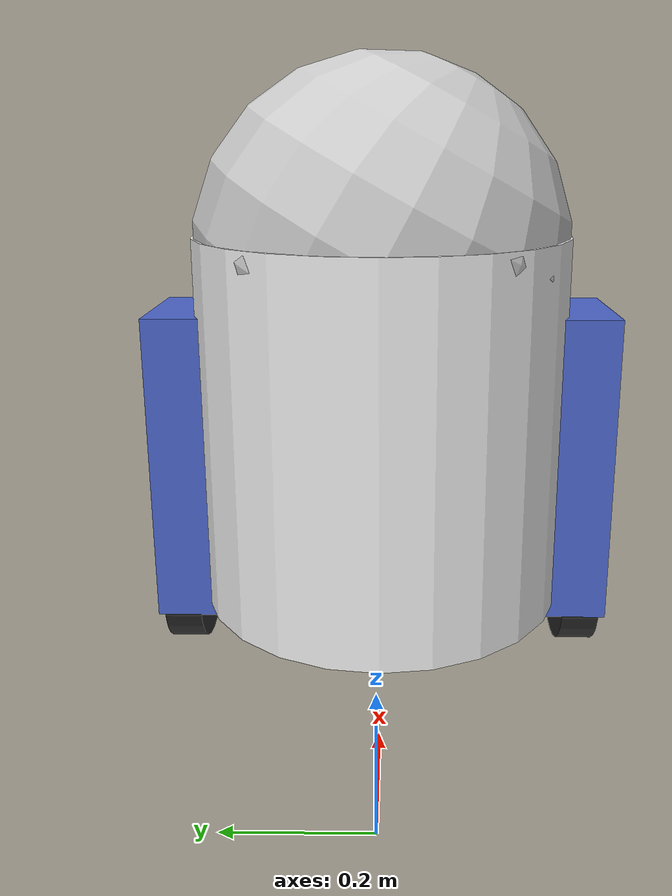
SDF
<?xml version="1.0" ?>
<sdf version="1.10">
    <model name="r2d2" canonical_link="body">

      <link name="body">
        <pose relative_to="__model__">0.5 0 0.4 0 0 0</pose>
        <inertial>
          <mass>3.14395</mass>
          <inertia>
            <ixx>0.095329</ixx>
            <ixy>0</ixy>
            <ixz>0</ixz>
            <iyy>0.381317</iyy>
            <iyz>0</iyz>
            <izz>0.476646</izz>
          </inertia>
        </inertial>
        <visual name="body_visual">
          <geometry>
            <cylinder>
              <length>0.6</length>
              <radius>0.3</radius>
            </cylinder>
          </geometry>

          <material>
            <ambient>0.95 0.95 0.95 1</ambient>
            <diffuse>0.95 0.95 0.95 1</diffuse>
            <specular>0.2 0.2 0.2 1</specular>
          </material>
        </visual>
        <collision name="body_collision">
          <geometry>
            <cylinder>
              <length>0.7</length>
              <radius>0.3</radius>
            </cylinder>
          </geometry>
        </collision>
      </link>

      <link name="left_wheel">
        <pose relative_to="body">0 0.33 -0.3 -1.5707 0 0</pose>
        <inertial>
          <mass>2</mass>
          <inertia>
            <ixx>0.043333</ixx>
            <ixy>0</ixy>
            <ixz>0</ixz>
            <iyy>0.043333</iyy>
            <iyz>0</iyz>
            <izz>0.08</izz>
          </inertia>
        </inertial>
        <visual name="left_wheel_visual">
          <geometry>
            <cylinder>
              <radius>0.1</radius>
              <length>0.06</length>
            </cylinder>
          </geometry>
          <material>
            <ambient>0.2 0.2 0.2 1</ambient>
            <diffuse>0.2 0.2 0.2 1</diffuse>
            <specular>0.01 0.01 0.01 1</specular>
          </material>
        </visual>
        <collision name="left_wheel_collision">
          <geometry>
            <cylinder>
              <radius>0.1</radius>
              <length>0.06</length>
            </cylinder>
          </geometry>
        </collision>
      </link>

      <link name="right_wheel">
        <pose relative_to="body">0 -0.33 -0.3 -1.5707 0 0</pose>
        <inertial>
          <mass>2</mass>
          <inertia>
            <ixx>0.043333</ixx>
            <ixy>0</ixy>
            <ixz>0</ixz>
            <iyy>0.043333</iyy>
            <iyz>0</iyz>
            <izz>0.08</izz>
          </inertia>
        </inertial>
        <visual name="right_wheel_visual">
          <geometry>
            <cylinder>
              <radius>0.1</radius>
              <length>0.06</length>
            </cylinder>
          </geometry>
          <material>
            <ambient>0.2 0.2 0.2 1</ambient>
            <diffuse>0.2 0.2 0.2 1</diffuse>
            <specular>0.01 0.01 0.01 1</specular>
          </material>
        </visual>
        <collision name="right_wheel_collision">
          <geometry>
            <cylinder>
              <radius>0.1</radius>
              <length>0.06</length>
            </cylinder>
          </geometry>
        </collision>
      </link>

      <link name="center_wheel">
        <pose relative_to="body">0.27 0 -0.31 -1.5707 0 0</pose>
        <inertial>
          <mass>3</mass>
          <inertia>
            <ixx>0.02</ixx>
            <ixy>0</ixy>
            <ixz>0</ixz>
            <iyy>0.02</iyy>
            <iyz>0</iyz>
            <izz>0.02</izz>
          </inertia>
        </inertial>
        <visual name="center_wheel_visual">
          <geometry>
            <cylinder>
              <radius>0.07</radius>
              <length>0.06</length>
            </cylinder>
          </geometry>
          <material>
            <ambient>0.2 0.2 0.2 1</ambient>
            <diffuse>0.2 0.2 0.2 1</diffuse>
            <specular>0.01 0.01 0.01 1</specular>
          </material>
        </visual>
        <collision name="center_wheel_collision">
          <geometry>
            <cylinder>
              <radius>0.08</radius>
              <length>0.06</length>
            </cylinder>
          </geometry>
        </collision>
      </link>

      <frame name="caster_frame" attached_to="body">
        <pose>0.0 0 0.28 0.5 0 0</pose>
      </frame>
      <link name="caster">
        <pose relative_to="caster_frame"/>
        <inertial>
          <mass>1</mass>
          <inertia>
            <ixx>0.016</ixx>
            <ixy>0</ixy>
            <ixz>0</ixz>
            <iyy>0.016</iyy>
            <iyz>0</iyz>
            <izz>0.016</izz>
          </inertia>
        </inertial>
        <visual name="caster_visual">
          <geometry>
            <sphere>
              <radius>0.3</radius>
            </sphere>
          </geometry>
          <material>
            <ambient>0.8 0.8 0.8 1</ambient>
            <diffuse>0.8 0.8 0.8 1</diffuse>
            <specular>0.2 0.2 0.2 1</specular>
          </material>
        </visual>
        <collision name="caster_collision">
          <geometry>
            <sphere>
              <radius>0.29</radius>
            </sphere>
          </geometry>
        </collision>
      </link>

      <link name="eyered">

        <pose relative_to="body">0.23 0.07 0.45 0 0 0</pose>
        <inertial>
          <mass>0.05</mass>
          <inertia>
            <ixx>0.01</ixx>
            <ixy>0</ixy>
            <ixz>0</ixz>
            <iyy>0.01</iyy>
            <iyz>0</iyz>
            <izz>0.01</izz>
          </inertia>
        </inertial>
        <visual name="eyered_visual">
          <geometry>
            <sphere>
              <radius>0.025</radius>
            </sphere>
          </geometry>
          <material>

            <ambient>1.0 0.0 0.0 1</ambient>
            <diffuse>1.0 0.0 0.0 1</diffuse>
            <specular>0.1 0.1 0.1 1</specular>
          </material>
        </visual>
        <collision name="eye_collision">
          <geometry>
            <sphere>
              <radius>0.03</radius>
            </sphere>
          </geometry>
        </collision>
      </link>
      <joint name="redeye_joint" type="fixed">
        <parent>body</parent>
        <child>eyered</child>
      </joint>

      <link name="eye2">

        <pose relative_to="body">0.24 0 0.45 0 0 0</pose>
        <inertial>
          <mass>0.05</mass>
          <inertia>
            <ixx>0.01</ixx>
            <ixy>0</ixy>
            <ixz>0</ixz>
            <iyy>0.01</iyy>
            <iyz>0</iyz>
            <izz>0.01</izz>
          </inertia>
        </inertial>
        <visual name="eye2_visual">
          <geometry>
            <sphere>
              <radius>0.025</radius>
            </sphere>
          </geometry>
          <material>

            <ambient>0.0 0.0 0.0 1</ambient>
            <diffuse>0.0 0.0 0.0 1</diffuse>
            <specular>0.1 0.1 0.1 1</specular>
          </material>
        </visual>
        <collision name="eye2_collision">
          <geometry>
            <sphere>
              <radius>0.03</radius>
            </sphere>
          </geometry>
        </collision>
      </link>
      <joint name="eye2_joint" type="fixed">
        <parent>body</parent>
        <child>eye2</child>
      </joint>

      <link name="side_leg_left">
        <pose relative_to="body">0 0.32 -0.07 0 0 0</pose>
        <inertial>
          <mass>0.2</mass>
          <inertia>
            <ixx>0.01</ixx>
            <ixy>0</ixy>
            <ixz>0</ixz>
            <iyy>0.01</iyy>
            <iyz>0</iyz>
            <izz>0.01</izz>
          </inertia>
        </inertial>
        <visual name="side_leg_left_visual">
          <geometry>
            <box>
              <size>0.2 0.1 0.5</size>
            </box>
          </geometry>
          <material>
            <ambient>0.3 0.4 0.8 1</ambient>
            <diffuse>0.3 0.4 0.8 1</diffuse>
            <specular>0.1 0.1 0.1 1</specular>
          </material>
        </visual>
        <collision name="side_leg_left_collision">
          <geometry>
            <box>
              <size>0.2 0.1 0.5</size>
            </box>
          </geometry>
        </collision>
      </link>

      <joint name="side_leg_left_joint" type="fixed">
        <parent>body</parent>
        <child>side_leg_left</child>
      </joint>

      <link name="side_leg_right">
        <pose relative_to="body">0 -0.32 -0.07 0 0 0</pose>
        <inertial>
          <mass>0.2</mass>
          <inertia>
            <ixx>0.01</ixx>
            <ixy>0</ixy>
            <ixz>0</ixz>
            <iyy>0.01</iyy>
            <iyz>0</iyz>
            <izz>0.01</izz>
          </inertia>
        </inertial>
        <visual name="side_leg_right_visual">
          <geometry>
            <box>
              <size>0.2 0.1 0.5</size>
            </box>
          </geometry>
          <material>
            <ambient>0.3 0.4 0.8 1</ambient>
            <diffuse>0.3 0.4 0.8 1</diffuse>
            <specular>0.1 0.1 0.1 1</specular>
          </material>
        </visual>
        <collision name="side_leg_right_collision">
          <geometry>
            <box>
              <size>0.2 0.1 0.5</size>
            </box>
          </geometry>
        </collision>
      </link>

      <joint name="side_leg_right_joint" type="fixed">
        <parent>body</parent>
        <child>side_leg_right</child>
      </joint>

      <joint name="left_wheel_joint" type="revolute">
        <pose relative_to="left_wheel"/>
        <parent>body</parent>
        <child>left_wheel</child>
        <axis>
          <xyz expressed_in="__model__">0 1 0</xyz>
          <limit>
            <lower>-1.79769e+308</lower>
            <upper>1.79769e+308</upper>
          </limit>
        </axis>
      </joint>

      <joint name="right_wheel_joint" type="revolute">
        <pose relative_to="right_wheel"/>
        <parent>body</parent>
        <child>right_wheel</child>
        <axis>
          <xyz expressed_in="__model__">0 1 0</xyz>
          <limit>
            <lower>-1.79769e+308</lower>
            <upper>1.79769e+308</upper>
          </limit>
        </axis>
      </joint>

      <!-- Центральное колесо (шарнир) -->
      <joint name="center_wheel_joint" type="revolute">
        <pose relative_to="center_wheel"/>
        <parent>body</parent>
        <child>center_wheel</child>
        <axis>
          <xyz expressed_in="__model__">0 1 0</xyz>
          <limit>
            <lower>-1.79769e+308</lower>
            <upper>1.79769e+308</upper>
          </limit>
        </axis>
      </joint>

      <!-- "Голова" - шарнир "caster_wheel" -->
      <joint name="caster_wheel" type="ball">
        <parent>body</parent>
        <child>caster</child>
      </joint>

      <!-- Плагин дифф. привода (управляет только левым и правым колесом) -->
      <plugin
        filename="gz-sim-diff-drive-system"
        name="gz::sim::systems::DiffDrive">
        <left_joint>left_wheel_joint</left_joint>
        <right_joint>right_wheel_joint</right_joint>
        <wheel_separation>1.2</wheel_separation>
        <wheel_radius>0.4</wheel_radius>
        <odom_publish_frequency>1</odom_publish_frequency>
        <topic>/cmd_vel</topic>
      </plugin>

      <plugin filename="gz-sim-touchplugin-system"
              name="gz::sim::systems::TouchPlugin">
        <target>r2d2</target>
        <namespace>wall</namespace>
        <time>0.001</time>
        <enabled>true</enabled>
      </plugin>

      <frame name="lidar_frame" attached_to="body">
        <pose>0.8 0 0.5 0 0 0</pose>
      </frame>
    </model>
</sdf>
